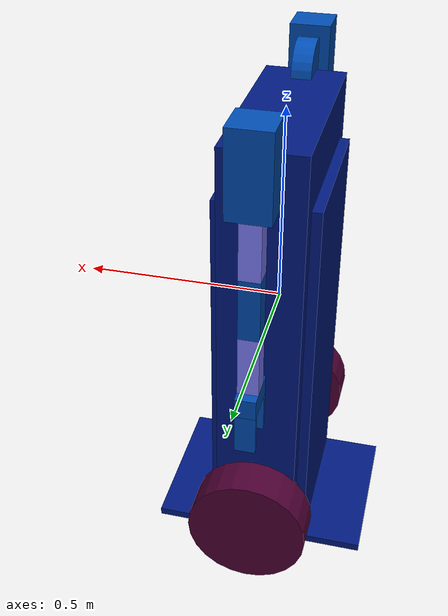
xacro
<?xml version="1.0"?>
<robot xmlns:xacro="http://www.ros.org/wiki/xacro" name="taser">
    <xacro:arg name="initial_positions_file" default="initial_positions.yaml" />

    <!-- Import taser urdf file -->
    <xacro:include filename="$(find taser_ros)/config/taser.urdf" />

    <!-- Import control_xacro -->
    <xacro:include filename="taser.ros2_control.xacro" />

    <xacro:taser_ros2_control name="FakeSystem" initial_positions_file="$(arg initial_positions_file)"/>

</robot>

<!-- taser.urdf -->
<!-- |    This document was autogenerated by xacro from /workspace/taser/src/taser/common/model/urdf/xacro/robot.urdf.xacro | -->
<!-- |    EDITING THIS FILE BY HAND IS NOT RECOMMENDED                                 | -->
<robot name="taser">
  <material name="blue">
    <color rgba="0 0.1 0.5 1"/>
  </material>
  <material name="light-blue">
    <color rgba="0 0.3 0.7 1"/>
  </material>
  <material name="white">
    <color rgba="0.5 0.5 1 1"/>
  </material>
  <material name="pink">
    <color rgba="0.3 0 0.2 1"/>
  </material>
  <ros2_control name="taser" type="system">
    <hardware>
      <plugin>mock_components/GenericSystem</plugin>
      <param name="calculate_dynamics">true</param>
    </hardware>
    <joint name="left_arm_shoulder_bridge_left_arm_shoulder_joint">
      <command_interface name="velocity"/>
      <state_interface name="position"/>
      <state_interface name="velocity"/>
    </joint>
    <joint name="left_arm_shoulder_left_arm_1_joint">
      <command_interface name="velocity"/>
      <state_interface name="position"/>
      <state_interface name="velocity"/>
    </joint>
    <joint name="left_arm_1_left_arm_2_joint">
      <command_interface name="velocity"/>
      <state_interface name="position"/>
      <state_interface name="velocity"/>
    </joint>
    <joint name="left_arm_2_left_arm_3_joint">
      <command_interface name="velocity"/>
      <state_interface name="position"/>
      <state_interface name="velocity"/>
    </joint>
    <joint name="left_arm_3_left_arm_4_joint">
      <command_interface name="velocity"/>
      <state_interface name="position"/>
      <state_interface name="velocity"/>
    </joint>
    <joint name="left_arm_4_left_arm_5_joint">
      <command_interface name="velocity"/>
      <state_interface name="position"/>
      <state_interface name="velocity"/>
    </joint>
    <joint name="right_arm_shoulder_bridge_right_arm_shoulder_joint">
      <command_interface name="velocity"/>
      <state_interface name="position"/>
      <state_interface name="velocity"/>
    </joint>
    <joint name="right_arm_shoulder_right_arm_1_joint">
      <command_interface name="velocity"/>
      <state_interface name="position"/>
      <state_interface name="velocity"/>
    </joint>
    <joint name="right_arm_1_right_arm_2_joint">
      <command_interface name="velocity"/>
      <state_interface name="position"/>
      <state_interface name="velocity"/>
    </joint>
    <joint name="right_arm_2_right_arm_3_joint">
      <command_interface name="velocity"/>
      <state_interface name="position"/>
      <state_interface name="velocity"/>
    </joint>
    <joint name="right_arm_3_right_arm_4_joint">
      <command_interface name="velocity"/>
      <state_interface name="position"/>
      <state_interface name="velocity"/>
    </joint>
    <joint name="right_arm_4_right_arm_5_joint">
      <command_interface name="velocity"/>
      <state_interface name="position"/>
      <state_interface name="velocity"/>
    </joint>
    <joint name="base_link_left_wheel_joint">
      <command_interface name="velocity"/>
      <state_interface name="position"/>
      <state_interface name="velocity"/>
    </joint>
    <joint name="base_link_right_wheel_joint">
      <command_interface name="velocity"/>
      <state_interface name="position"/>
      <state_interface name="velocity"/>
    </joint>
  </ros2_control>
  <link name="base_link">
    <visual>
      <origin rpy="0.0 0.0 0.0" xyz="0.0 0.0 0.0"/>
      <geometry>
        <box size="0.2 0.5 1"/>
      </geometry>
      <material name="blue"/>
    </visual>
    <collision>
      <origin rpy="0.0 0.0 0.0" xyz="0.0 0.0 0.0"/>
      <geometry>
        <box size="0.2 0.5 1"/>
      </geometry>
    </collision>
  </link>
  <link name="front_lock">
    <visual>
      <origin rpy="0.0 0.0 0.0" xyz="+0.0125 0.0 0.0"/>
      <geometry>
        <box size="0.025 0.4 1.0"/>
      </geometry>
      <material name="blue"/>
    </visual>
    <collision>
      <origin rpy="0.0 0.0 0.0" xyz="+0.0125 0.0 0.0"/>
      <geometry>
        <box size="0.025 0.4 1.0"/>
      </geometry>
    </collision>
  </link>
  <joint name="base_link_front_lock_joint" type="prismatic">
    <parent link="base_link"/>
    <child link="front_lock"/>
    <origin rpy="0.0 0.0 0.0" xyz="+0.1 0.0 -0.15"/>
    <axis xyz="0 0 1"/>
    <dynamics damping="0.1" friction="0.1"/>
    <limit effort="0.0" lower="0.0" upper="0.15" velocity="0.0"/>
  </joint>
  <link name="front_lock_support">
    <visual>
      <origin rpy="0.0 0.0 0.0" xyz="+0.075 0.0 -0.01"/>
      <geometry>
        <box size="0.15 0.4 0.02"/>
      </geometry>
      <material name="blue"/>
    </visual>
    <collision>
      <origin rpy="0.0 0.0 0.0" xyz="+0.075 0.0 -0.01"/>
      <geometry>
        <box size="0.15 0.4 0.02"/>
      </geometry>
    </collision>
  </link>
  <joint name="front_lock_support_joint" type="revolute">
    <parent link="front_lock"/>
    <child link="front_lock_support"/>
    <origin rpy="0.0 0.0 0.0" xyz="+0.025 0.0 -0.48"/>
    <axis xyz="0 +1 0"/>
    <dynamics damping="0.1" friction="0.1"/>
    <limit effort="0.0" lower="-1.57" upper="0.0" velocity="0.0"/>
  </joint>
  <link name="back_lock">
    <visual>
      <origin rpy="0.0 0.0 0.0" xyz="-0.0125 0.0 0.0"/>
      <geometry>
        <box size="0.025 0.4 1.0"/>
      </geometry>
      <material name="blue"/>
    </visual>
    <collision>
      <origin rpy="0.0 0.0 0.0" xyz="-0.0125 0.0 0.0"/>
      <geometry>
        <box size="0.025 0.4 1.0"/>
      </geometry>
    </collision>
  </link>
  <joint name="base_link_back_lock_joint" type="prismatic">
    <parent link="base_link"/>
    <child link="back_lock"/>
    <origin rpy="0.0 0.0 0.0" xyz="-0.1 0.0 -0.15"/>
    <axis xyz="0 0 1"/>
    <dynamics damping="0.1" friction="0.1"/>
    <limit effort="0.0" lower="0.0" upper="0.15" velocity="0.0"/>
  </joint>
  <link name="back_lock_support">
    <visual>
      <origin rpy="0.0 0.0 0.0" xyz="-0.075 0.0 -0.01"/>
      <geometry>
        <box size="0.15 0.4 0.02"/>
      </geometry>
      <material name="blue"/>
    </visual>
    <collision>
      <origin rpy="0.0 0.0 0.0" xyz="-0.075 0.0 -0.01"/>
      <geometry>
        <box size="0.15 0.4 0.02"/>
      </geometry>
    </collision>
  </link>
  <joint name="back_lock_support_joint" type="revolute">
    <parent link="back_lock"/>
    <child link="back_lock_support"/>
    <origin rpy="0.0 0.0 0.0" xyz="-0.025 0.0 -0.48"/>
    <axis xyz="0 -1 0"/>
    <dynamics damping="0.1" friction="0.1"/>
    <limit effort="0.0" lower="-1.57" upper="0.0" velocity="0.0"/>
  </joint>
  <link name="left_arm_1">
    <visual>
      <origin rpy="0 1.57 0.0" xyz="0.0 0.0 0.0"/>
      <geometry>
        <cylinder length="0.05" radius="0.075"/>
      </geometry>
      <material name="light-blue"/>
    </visual>
    <collision>
      <origin rpy="0 1.57 0.0" xyz="0.0 0.0 0.0"/>
      <geometry>
        <cylinder length="0.05" radius="0.075"/>
      </geometry>
    </collision>
  </link>
  <joint name="base_link_left_arm_1_joint" type="revolute">
    <parent link="base_link"/>
    <child link="left_arm_1"/>
    <origin rpy="0.0 0.0 0.0" xyz="0.0 +0.25 0.5"/>
    <axis xyz="1 0 0"/>
    <dynamics damping="0.1" friction="0.1"/>
    <limit acceleration="1000.0" effort="0.0" lower="0.0" upper="1.57" velocity="1000.0"/>
  </joint>
  <link name="left_arm_2">
    <visual>
      <origin rpy="0.0 0.0 0.0" xyz="0.0 0.0 0.0"/>
      <geometry>
        <box size="0.1 0.1 0.2"/>
      </geometry>
      <material name="light-blue"/>
    </visual>
    <collision>
      <origin rpy="0.0 0.0 0.0" xyz="0.0 0.0 0.0"/>
      <geometry>
        <box size="0.1 0.1 0.2"/>
      </geometry>
    </collision>
  </link>
  <joint name="left_arm_1_left_arm_2_joint" type="continuous">
    <parent link="left_arm_1"/>
    <child link="left_arm_2"/>
    <origin rpy="0.0 0.0 0.0" xyz="0.0 +0.075 0.0"/>
    <axis xyz="0 1 0"/>
    <dynamics damping="0.1" friction="0.1"/>
    <limit acceleration="1000.0" effort="0.0" lower="-3.14" upper="3.14" velocity="1000.0"/>
  </joint>
  <link name="left_arm_3">
    <visual>
      <origin rpy="0.0 0.0 0.0" xyz="0.0 0.0 -0.075"/>
      <geometry>
        <box size="0.05 0.05 0.15"/>
      </geometry>
      <material name="white"/>
    </visual>
    <collision>
      <origin rpy="0.0 0.0 0.0" xyz="0.0 0.0 -0.075"/>
      <geometry>
        <box size="0.05 0.05 0.15"/>
      </geometry>
    </collision>
  </link>
  <joint name="left_arm_2_left_arm_3_joint" type="continuous">
    <parent link="left_arm_2"/>
    <child link="left_arm_3"/>
    <origin rpy="0.0 0.0 0.0" xyz="0.0 0 -0.1"/>
    <axis xyz="0 0 1"/>
    <dynamics damping="0.1" friction="0.1"/>
    <limit acceleration="1000.0" effort="0.0" lower="-3.14" upper="3.14" velocity="1000.0"/>
  </joint>
  <link name="left_arm_4">
    <visual>
      <origin rpy="0.0 0.0 0.0" xyz="0.0 0.0 -0.075"/>
      <geometry>
        <box size="0.05 0.05 0.15"/>
      </geometry>
      <material name="light-blue"/>
    </visual>
    <collision>
      <origin rpy="0.0 0.0 0.0" xyz="0.0 0.0 -0.075"/>
      <geometry>
        <box size="0.05 0.05 0.15"/>
      </geometry>
    </collision>
  </link>
  <joint name="left_arm_3_left_arm_4_joint" type="continuous">
    <parent link="left_arm_3"/>
    <child link="left_arm_4"/>
    <origin rpy="0.0 0.0 0.0" xyz="0.0 0 -0.15"/>
    <axis xyz="0 1 0"/>
    <dynamics damping="0.1" friction="0.1"/>
    <limit acceleration="1000.0" effort="0.0" lower="-3.14" upper="3.14" velocity="1000.0"/>
  </joint>
  <link name="left_arm_5">
    <visual>
      <origin rpy="0.0 0.0 0.0" xyz="0.0 0.0 -0.075"/>
      <geometry>
        <box size="0.05 0.05 0.15"/>
      </geometry>
      <material name="white"/>
    </visual>
    <collision>
      <origin rpy="0.0 0.0 0.0" xyz="0.0 0.0 -0.075"/>
      <geometry>
        <box size="0.05 0.05 0.15"/>
      </geometry>
    </collision>
  </link>
  <joint name="left_arm_4_left_arm_5_joint" type="continuous">
    <parent link="left_arm_4"/>
    <child link="left_arm_5"/>
    <origin rpy="0.0 0.0 0.0" xyz="0.0 0 -0.15"/>
    <axis xyz="1 0 0"/>
    <dynamics damping="0.1" friction="0.1"/>
    <limit acceleration="1000.0" effort="0.0" lower="-3.14" upper="3.14" velocity="1000.0"/>
  </joint>
  <link name="left_arm_6">
    <visual>
      <origin rpy="0.0 0.0 0.0" xyz="0.0 0.0 -0.025"/>
      <geometry>
        <box size="0.05 0.1 0.05"/>
      </geometry>
      <material name="light-blue"/>
    </visual>
    <collision>
      <origin rpy="0.0 0.0 0.0" xyz="0.0 0.0 -0.025"/>
      <geometry>
        <box size="0.05 0.1 0.05"/>
      </geometry>
    </collision>
  </link>
  <joint name="left_arm_5_left_arm_6_joint" type="continuous">
    <parent link="left_arm_5"/>
    <child link="left_arm_6"/>
    <origin rpy="0.0 0.0 0.0" xyz="0.0 0 -0.15"/>
    <axis xyz="0 0 1"/>
    <dynamics damping="0.1" friction="0.1"/>
    <limit acceleration="1000.0" effort="0.0" lower="-3.14" upper="3.14" velocity="1000.0"/>
  </joint>
  <link name="left_arm_gripper1">
    <visual>
      <origin rpy="0.0 0.0 0.0" xyz="0.0 0.00625 -0.05"/>
      <geometry>
        <box size="0.05 0.0125 0.1"/>
      </geometry>
      <material name="light-blue"/>
    </visual>
    <collision>
      <origin rpy="0.0 0.0 0.0" xyz="0.0 0.00625 -0.05"/>
      <geometry>
        <box size="0.05 0.0125 0.1"/>
      </geometry>
    </collision>
  </link>
  <joint name="left_arm_6_left_arm_gripper1_joint" type="prismatic">
    <parent link="left_arm_6"/>
    <child link="left_arm_gripper1"/>
    <origin rpy="0.0 0.0 0.0" xyz="0.0 0.037500000000000006 -0.05"/>
    <axis xyz="0 1 0"/>
    <dynamics damping="0.1" friction="0.1"/>
    <limit acceleration="1000.0" effort="0.0" lower="-0.037500000000000006" upper="0.0" velocity="1000.0"/>
  </joint>
  <link name="left_arm_gripper2">
    <visual>
      <origin rpy="0.0 0.0 0.0" xyz="0.0 -0.00625 -0.05"/>
      <geometry>
        <box size="0.05 0.0125 0.1"/>
      </geometry>
      <material name="light-blue"/>
    </visual>
    <collision>
      <origin rpy="0.0 0.0 0.0" xyz="0.0 -0.00625 -0.05"/>
      <geometry>
        <box size="0.05 0.0125 0.1"/>
      </geometry>
    </collision>
  </link>
  <joint name="left_arm_6_left_arm_gripper2_joint" type="prismatic">
    <parent link="left_arm_6"/>
    <child link="left_arm_gripper2"/>
    <origin rpy="0.0 0.0 0.0" xyz="0.0 -0.037500000000000006 -0.05"/>
    <axis xyz="0 1 0"/>
    <dynamics damping="0.1" friction="0.1"/>
    <limit acceleration="1000.0" effort="0.0" lower="0.0" upper="0.037500000000000006" velocity="1000.0"/>
  </joint>
  <!-- Virtual End Effector Link -->
  <link name="left_arm_eef">
        </link>
  <joint name="left_arm_6_left_arm_eef_joint" type="fixed">
    <parent link="left_arm_6"/>
    <child link="left_arm_eef"/>
    <origin rpy="0.0 0.0 0.0" xyz="0.0 0 -0.1"/>
  </joint>
  <link name="right_arm_1">
    <visual>
      <origin rpy="0 1.57 0.0" xyz="0.0 0.0 0.0"/>
      <geometry>
        <cylinder length="0.05" radius="0.075"/>
      </geometry>
      <material name="light-blue"/>
    </visual>
    <collision>
      <origin rpy="0 1.57 0.0" xyz="0.0 0.0 0.0"/>
      <geometry>
        <cylinder length="0.05" radius="0.075"/>
      </geometry>
    </collision>
  </link>
  <joint name="base_link_right_arm_1_joint" type="revolute">
    <parent link="base_link"/>
    <child link="right_arm_1"/>
    <origin rpy="0.0 0.0 0.0" xyz="0.0 -0.25 0.5"/>
    <axis xyz="1 0 0"/>
    <dynamics damping="0.1" friction="0.1"/>
    <limit acceleration="1000.0" effort="0.0" lower="-1.57" upper="0.0" velocity="1000.0"/>
  </joint>
  <link name="right_arm_2">
    <visual>
      <origin rpy="0.0 0.0 0.0" xyz="0.0 0.0 0.0"/>
      <geometry>
        <box size="0.1 0.1 0.2"/>
      </geometry>
      <material name="light-blue"/>
    </visual>
    <collision>
      <origin rpy="0.0 0.0 0.0" xyz="0.0 0.0 0.0"/>
      <geometry>
        <box size="0.1 0.1 0.2"/>
      </geometry>
    </collision>
  </link>
  <joint name="right_arm_1_right_arm_2_joint" type="continuous">
    <parent link="right_arm_1"/>
    <child link="right_arm_2"/>
    <origin rpy="0.0 0.0 0.0" xyz="0.0 -0.075 0.0"/>
    <axis xyz="0 1 0"/>
    <dynamics damping="0.1" friction="0.1"/>
    <limit acceleration="1000.0" effort="0.0" lower="-3.14" upper="3.14" velocity="1000.0"/>
  </joint>
  <link name="right_arm_3">
    <visual>
      <origin rpy="0.0 0.0 0.0" xyz="0.0 0.0 -0.075"/>
      <geometry>
        <box size="0.05 0.05 0.15"/>
      </geometry>
      <material name="white"/>
    </visual>
    <collision>
      <origin rpy="0.0 0.0 0.0" xyz="0.0 0.0 -0.075"/>
      <geometry>
        <box size="0.05 0.05 0.15"/>
      </geometry>
    </collision>
  </link>
  <joint name="right_arm_2_right_arm_3_joint" type="continuous">
    <parent link="right_arm_2"/>
    <child link="right_arm_3"/>
    <origin rpy="0.0 0.0 0.0" xyz="0.0 0 -0.1"/>
    <axis xyz="0 0 1"/>
    <dynamics damping="0.1" friction="0.1"/>
    <limit acceleration="1000.0" effort="0.0" lower="-3.14" upper="3.14" velocity="1000.0"/>
  </joint>
  <link name="right_arm_4">
    <visual>
      <origin rpy="0.0 0.0 0.0" xyz="0.0 0.0 -0.075"/>
      <geometry>
        <box size="0.05 0.05 0.15"/>
      </geometry>
      <material name="light-blue"/>
    </visual>
    <collision>
      <origin rpy="0.0 0.0 0.0" xyz="0.0 0.0 -0.075"/>
      <geometry>
        <box size="0.05 0.05 0.15"/>
      </geometry>
    </collision>
  </link>
  <joint name="right_arm_3_right_arm_4_joint" type="continuous">
    <parent link="right_arm_3"/>
    <child link="right_arm_4"/>
    <origin rpy="0.0 0.0 0.0" xyz="0.0 0 -0.15"/>
    <axis xyz="0 1 0"/>
    <dynamics damping="0.1" friction="0.1"/>
    <limit acceleration="1000.0" effort="0.0" lower="-3.14" upper="3.14" velocity="1000.0"/>
  </joint>
  <link name="right_arm_5">
    <visual>
      <origin rpy="0.0 0.0 0.0" xyz="0.0 0.0 -0.075"/>
      <geometry>
        <box size="0.05 0.05 0.15"/>
      </geometry>
      <material name="white"/>
    </visual>
    <collision>
      <origin rpy="0.0 0.0 0.0" xyz="0.0 0.0 -0.075"/>
      <geometry>
        <box size="0.05 0.05 0.15"/>
      </geometry>
    </collision>
  </link>
  <joint name="right_arm_4_right_arm_5_joint" type="continuous">
    <parent link="right_arm_4"/>
    <child link="right_arm_5"/>
    <origin rpy="0.0 0.0 0.0" xyz="0.0 0 -0.15"/>
    <axis xyz="1 0 0"/>
    <dynamics damping="0.1" friction="0.1"/>
    <limit acceleration="1000.0" effort="0.0" lower="-3.14" upper="3.14" velocity="1000.0"/>
  </joint>
  <link name="right_arm_6">
    <visual>
      <origin rpy="0.0 0.0 0.0" xyz="0.0 0.0 -0.025"/>
      <geometry>
        <box size="0.05 0.1 0.05"/>
      </geometry>
      <material name="light-blue"/>
    </visual>
    <collision>
      <origin rpy="0.0 0.0 0.0" xyz="0.0 0.0 -0.025"/>
      <geometry>
        <box size="0.05 0.1 0.05"/>
      </geometry>
    </collision>
  </link>
  <joint name="right_arm_5_right_arm_6_joint" type="continuous">
    <parent link="right_arm_5"/>
    <child link="right_arm_6"/>
    <origin rpy="0.0 0.0 0.0" xyz="0.0 0 -0.15"/>
    <axis xyz="0 0 1"/>
    <dynamics damping="0.1" friction="0.1"/>
    <limit acceleration="1000.0" effort="0.0" lower="-3.14" upper="3.14" velocity="1000.0"/>
  </joint>
  <link name="right_arm_gripper1">
    <visual>
      <origin rpy="0.0 0.0 0.0" xyz="0.0 0.00625 -0.05"/>
      <geometry>
        <box size="0.05 0.0125 0.1"/>
      </geometry>
      <material name="light-blue"/>
    </visual>
    <collision>
      <origin rpy="0.0 0.0 0.0" xyz="0.0 0.00625 -0.05"/>
      <geometry>
        <box size="0.05 0.0125 0.1"/>
      </geometry>
    </collision>
  </link>
  <joint name="right_arm_6_right_arm_gripper1_joint" type="prismatic">
    <parent link="right_arm_6"/>
    <child link="right_arm_gripper1"/>
    <origin rpy="0.0 0.0 0.0" xyz="0.0 0.037500000000000006 -0.05"/>
    <axis xyz="0 1 0"/>
    <dynamics damping="0.1" friction="0.1"/>
    <limit acceleration="1000.0" effort="0.0" lower="-0.037500000000000006" upper="0.0" velocity="1000.0"/>
  </joint>
  <link name="right_arm_gripper2">
    <visual>
      <origin rpy="0.0 0.0 0.0" xyz="0.0 -0.00625 -0.05"/>
      <geometry>
        <box size="0.05 0.0125 0.1"/>
      </geometry>
      <material name="light-blue"/>
    </visual>
    <collision>
      <origin rpy="0.0 0.0 0.0" xyz="0.0 -0.00625 -0.05"/>
      <geometry>
        <box size="0.05 0.0125 0.1"/>
      </geometry>
    </collision>
  </link>
  <joint name="right_arm_6_right_arm_gripper2_joint" type="prismatic">
    <parent link="right_arm_6"/>
    <child link="right_arm_gripper2"/>
    <origin rpy="0.0 0.0 0.0" xyz="0.0 -0.037500000000000006 -0.05"/>
    <axis xyz="0 1 0"/>
    <dynamics damping="0.1" friction="0.1"/>
    <limit acceleration="1000.0" effort="0.0" lower="0.0" upper="0.037500000000000006" velocity="1000.0"/>
  </joint>
  <!-- Virtual End Effector Link -->
  <link name="right_arm_eef">
        </link>
  <joint name="right_arm_6_right_arm_eef_joint" type="fixed">
    <parent link="right_arm_6"/>
    <child link="right_arm_eef"/>
    <origin rpy="0.0 0.0 0.0" xyz="0.0 0 -0.1"/>
  </joint>
  <link name="left_wheel">
    <visual>
      <origin rpy="1.575 0.0 0.0" xyz="0.0 0.0 0.0"/>
      <geometry>
        <cylinder length="0.1" radius="0.15"/>
      </geometry>
      <material name="pink"/>
    </visual>
    <collision>
      <origin rpy="1.575 0.0 0.0" xyz="0.0 0.0 0.0"/>
      <geometry>
        <cylinder length="0.1" radius="0.15"/>
      </geometry>
    </collision>
  </link>
  <joint name="base_link_left_wheel_joint" type="continuous">
    <parent link="base_link"/>
    <child link="left_wheel"/>
    <origin rpy="0.0 0.0 0.0" xyz="0.0 +0.3 -0.5"/>
    <axis xyz="0 1 0"/>
    <dynamics damping="0.01" friction="0.0"/>
  </joint>
  <link name="right_wheel">
    <visual>
      <origin rpy="1.575 0.0 0.0" xyz="0.0 0.0 0.0"/>
      <geometry>
        <cylinder length="0.1" radius="0.15"/>
      </geometry>
      <material name="pink"/>
    </visual>
    <collision>
      <origin rpy="1.575 0.0 0.0" xyz="0.0 0.0 0.0"/>
      <geometry>
        <cylinder length="0.1" radius="0.15"/>
      </geometry>
    </collision>
  </link>
  <joint name="base_link_right_wheel_joint" type="continuous">
    <parent link="base_link"/>
    <child link="right_wheel"/>
    <origin rpy="0.0 0.0 0.0" xyz="0.0 -0.3 -0.5"/>
    <axis xyz="0 1 0"/>
    <dynamics damping="0.01" friction="0.0"/>
  </joint>
</robot>
